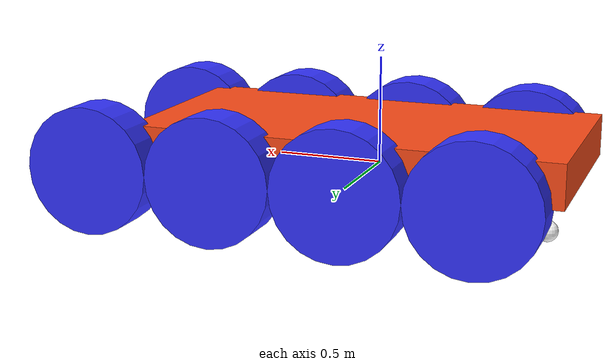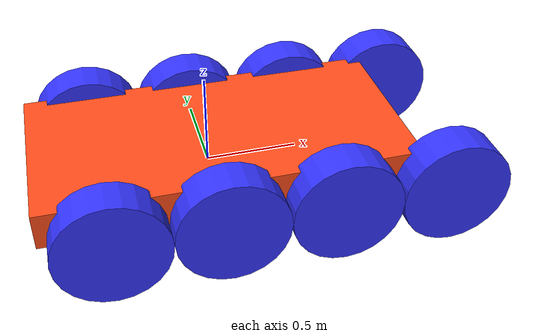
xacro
<?xml version="1.0"?>
<robot xmlns:xacro="http://www.ros.org/wiki/xacro" >

  <xacro:include filename="inertial_macros.xacro"/>

  <!-- Properties -->
  <xacro:property name="chassis_length" value="2.0"/>
  <xacro:property name="chassis_width" value="1.0"/>
  <xacro:property name="chassis_height" value="0.2"/>
  <xacro:property name="chassis_mass" value="10.0"/>

  <xacro:property name="wheel_radius" value="0.3"/>
  <xacro:property name="wheel_thickness" value="0.2"/>
  <xacro:property name="wheel_mass" value="2.0"/>

  <xacro:property name="wheel_offset_y" value="0.55"/>
  <xacro:property name="wheel_offset_z" value="0.0"/>

  <xacro:property name="caster_wheel_radius" value="0.05"/>
  <xacro:property name="caster_wheel_mass" value="0.5"/>
  <xacro:property name="caster_wheel_offset_x" value="0.15"/>
  <xacro:property name="caster_wheel_offset_z" value="${wheel_offset_z - wheel_radius + caster_wheel_radius}"/>

  <!-- Materials -->
  <material name="white"><color rgba="1 1 1 1"/></material>
  <material name="orange"><color rgba="1 0.3 0.1 1"/></material>
  <material name="blue"><color rgba="0.2 0.2 1 1"/></material>
  <material name="black"><color rgba="0 0 0 1"/></material>
  <material name="red"><color rgba="1 0 0 1"/></material>

  <!-- Base & Chassis -->
  <link name="base_link"/>

  <joint name="base_footprint_joint" type="fixed">
    <parent link="base_link"/>
    <child link="base_footprint"/>
    <origin xyz="0 0 0" rpy="0 0 0"/>
  </joint>
  <link name="base_footprint"/>

  <joint name="chassis_joint" type="fixed">
    <parent link="base_link"/>
    <child link="chassis"/>
    <origin xyz="-0.95 0 0.0"/>
  </joint>

  <link name="chassis">
    <visual>
      <origin xyz="1.0 0 ${chassis_height/2}"/>
      <geometry>
        <box size="${chassis_length} ${chassis_width} ${chassis_height}"/>
      </geometry>
      <material name="orange"/>
    </visual>
    <collision>
      <origin xyz="1.0 0 ${chassis_height/2}"/>
      <geometry>
        <box size="${chassis_length} ${chassis_width} ${chassis_height}"/>
      </geometry>
    </collision>
    <xacro:inertial_box mass="${chassis_mass}" x="${chassis_length}" y="${chassis_width}" z="${chassis_height}">
      <origin xyz="0 0 0" rpy="0 0 0"/>
    </xacro:inertial_box>
  </link>
  <gazebo reference="chassis">
    <material>Gazebo/Orange</material>
  </gazebo>

  <!-- Wheels -->
  <!-- Drive Wheels (Front Most) -->
  <joint name="left_wheel_joint" type="continuous">
    <parent link="base_link"/>
    <child link="left_wheel"/>
    <origin xyz="-0.6 ${wheel_offset_y} ${wheel_offset_z}" rpy="0 1.5708 0"/>
    <axis xyz="0 1 0"/>
  </joint>
  <link name="left_wheel">
    <visual>
      <origin rpy="1.5708 0 0"/>
      <geometry>
        <cylinder radius="${wheel_radius}" length="${wheel_thickness}"/>
      </geometry>
      <material name="blue"/>
    </visual>
    <collision>
      <origin rpy="1.5708 0 0"/>
      <geometry>
        <cylinder radius="${wheel_radius}" length="${wheel_thickness}"/>
      </geometry>
    </collision>
    <xacro:inertial_cylinder mass="${wheel_mass}" length="${wheel_thickness}" radius="${wheel_radius}">
      <origin xyz="0 0 0" rpy="0 0 0"/>
    </xacro:inertial_cylinder>
  </link>
  <gazebo reference="left_wheel">
    <material>Gazebo/Blue</material>
  </gazebo>

  <joint name="right_wheel_joint" type="continuous">
    <parent link="base_link"/>
    <child link="right_wheel"/>
    <origin xyz="-0.6 -${wheel_offset_y} ${wheel_offset_z}" rpy="0 1.5708 0"/>
    <axis xyz="0 1 0"/>
  </joint>
  <link name="right_wheel">
    <visual>
      <origin rpy="1.5708 0 0"/>
      <geometry>
        <cylinder radius="${wheel_radius}" length="${wheel_thickness}"/>
      </geometry>
      <material name="blue"/>
    </visual>
    <collision>
      <origin rpy="1.5708 0 0"/>
      <geometry>
        <cylinder radius="${wheel_radius}" length="${wheel_thickness}"/>
      </geometry>
    </collision>
    <xacro:inertial_cylinder mass="${wheel_mass}" length="${wheel_thickness}" radius="${wheel_radius}">
      <origin xyz="0 0 0" rpy="0 0 0"/>
    </xacro:inertial_cylinder>
  </link>
  <gazebo reference="right_wheel">
    <material>Gazebo/Blue</material>
  </gazebo>

  <!-- Free Wheels (3 each side) -->
  <xacro:macro name="freewheel" params="name x y">
    <joint name="${name}_joint" type="revolute">
      <parent link="base_link"/>
      <child link="${name}"/>
      <origin xyz="${x} ${y} ${wheel_offset_z}" rpy="0 1.5708 0"/>
      <axis xyz="0 1 0"/>
      <limit lower="-3.1415" upper="3.1415" effort="0.1" velocity="1.0"/>
    </joint>
    <link name="${name}">
      <visual>
        <origin rpy="1.5708 0 0"/>
        <geometry>
          <cylinder radius="${wheel_radius}" length="${wheel_thickness}"/>
        </geometry>
        <material name="blue"/>
      </visual>
      <collision>
        <origin rpy="1.5708 0 0"/>
        <geometry>
          <cylinder radius="${wheel_radius}" length="${wheel_thickness}"/>
        </geometry>
      </collision>
      <xacro:inertial_cylinder mass="${wheel_mass}" length="${wheel_thickness}" radius="${wheel_radius}">
        <origin xyz="0 0 0" rpy="0 0 0"/>
      </xacro:inertial_cylinder>
    </link>
  </xacro:macro>

  <!-- Left side -->
  <xacro:freewheel name="freewheel_left_1" x="0.0" y="${wheel_offset_y}"/>
  <xacro:freewheel name="freewheel_left_2" x="0.6" y="${wheel_offset_y}"/>
  <xacro:freewheel name="freewheel_left_3" x="1.2" y="${wheel_offset_y}"/>

  <!-- Right side -->
  <xacro:freewheel name="freewheel_right_1" x="0.0" y="-${wheel_offset_y}"/>
  <xacro:freewheel name="freewheel_right_2" x="0.6" y="-${wheel_offset_y}"/>
  <xacro:freewheel name="freewheel_right_3" x="1.2" y="-${wheel_offset_y}"/>

  <!-- Caster Wheel -->
  <joint name="caster_wheel_joint" type="fixed">
    <parent link="chassis"/>
    <child link="caster_wheel"/>
    <origin xyz="${caster_wheel_offset_x} 0 ${caster_wheel_offset_z}"/>
  </joint>
  <link name="caster_wheel">
    <visual>
      <geometry>
        <sphere radius="${caster_wheel_radius}"/>
      </geometry>
      <material name="white"/>
    </visual>
    <collision>
      <geometry>
        <sphere radius="${caster_wheel_radius}"/>
      </geometry>
    </collision>
    <xacro:inertial_sphere mass="${caster_wheel_mass}" radius="${caster_wheel_radius}">
      <origin xyz="0 0 0" rpy="0 0 0"/>
    </xacro:inertial_sphere>
  </link>
  <gazebo reference="caster_wheel">
    <material>Gazebo/White</material>
    <mu1 value="0.001"/>
    <mu2 value="0.001"/>
  </gazebo>
</robot>
